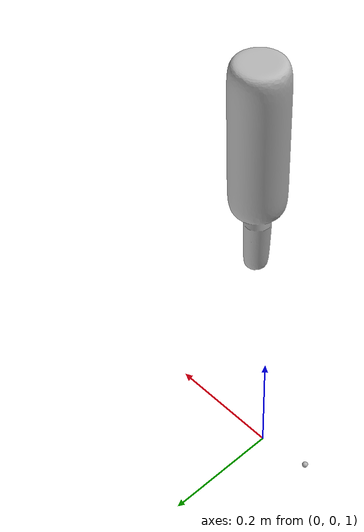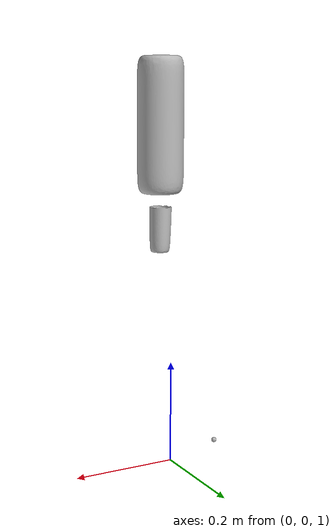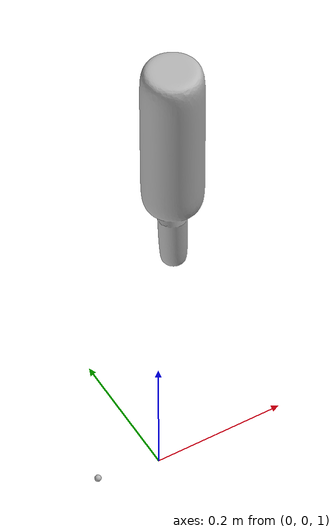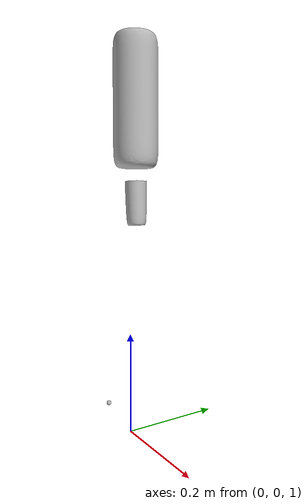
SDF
<?xml version='1.0'?>
<sdf version='1.6'>
<model name="hammer">
<static>false</static>
<pose> 0 0 0.775 0 0 0 </pose>

<link name='tool'>
	<pose>0.0247 0.0000 0.6880 0.000 -1.57 0.000</pose>
	<inertial>
		<pose>0.1785 -0.0001 0.0002 0 0 0</pose>
		<mass>0.1219</mass>
	</inertial>
	<collision name='tool_collision'>
		<geometry>
			<mesh><uri>model://tool_hammering_nail/tool.dae</uri></mesh>
		</geometry>
	</collision>
	<visual name='tool_visual'>
		<geometry>
			<mesh><uri>model://tool_hammering_nail/tool.dae</uri></mesh>
		</geometry>
	</visual>
	<sensor name='tool_contact' type='contact'>
		<plugin filename="libnail_collision.so" name="nail_collision" />
		<contact>
			<collision>tool_collision</collision>
		</contact>
	</sensor>
</link>

<model name="elbow_model">
	<pose>-0.1 0.0000 0.25 0 0 0</pose>
	<static>true</static>
	<link name="elbow_link">
		<pose>0 0 0 0 0 0</pose>
		<visual name="elbow_visual">
			<geometry><sphere>
				<radius>0.005</radius>
			</sphere></geometry>
		</visual>
	</link>
</model>

	<joint name="joint_elbow" type="revolute">
		<parent>tool</parent>
		<child>elbow_link</child>
		<axis>
			<xyz>0 1 0</xyz>
			<use_parent_model_frame>1</use_parent_model_frame>
			<dynamics>
				<friction>0.1</friction>
			</dynamics>
		</axis>
	</joint>

<plugin filename="libhammer.so" name="hammer"/>

</model>
</sdf>
